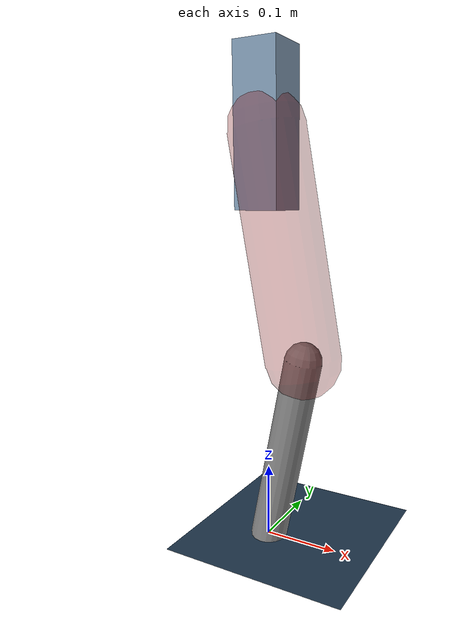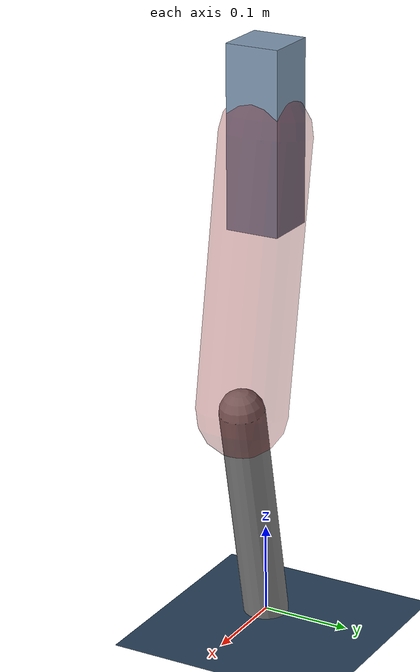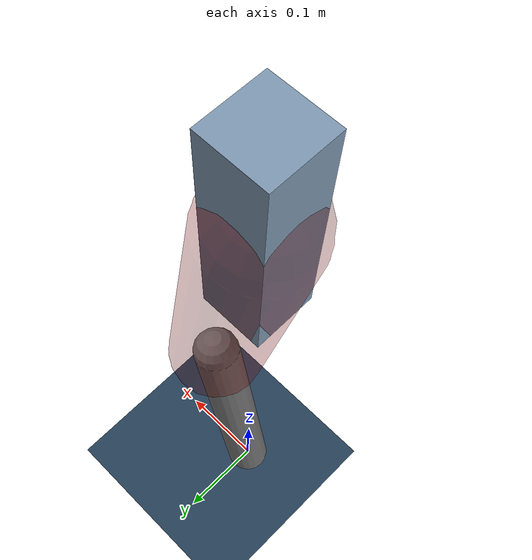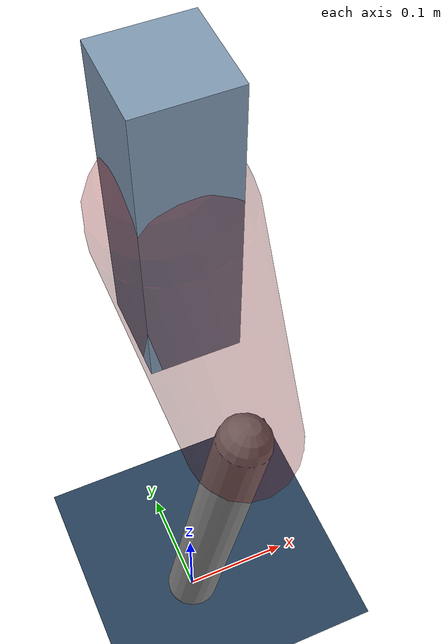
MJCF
<mujoco model="Hopper2D">
	<compiler inertiafromgeom="true" angle="radian" />
	<option timestep="0.001" integrator="implicit" cone="elliptic" solver="Newton" tolerance="1e-10" />

	<default>
		<geom contype="1" conaffinity="1" condim="3" friction="2 0.005 0.0001" solref="0.005 1" />
		<joint limited="true" damping="0.1" />
	</default>

	<asset>
		<texture name="skybox" type="skybox" builtin="gradient" rgb1=".4 .6 .8" rgb2="0 0 0" width="800" height="800" />
		<texture name="grid" type="2d" builtin="checker" rgb1=".1 .2 .3" rgb2=".2 .3 .4" width="300" height="300" mark="edge" markrgb=".2 .3 .4" />
		<material name="ground" texture="grid" texrepeat="1 1" texuniform="true" reflectance="0.1" />
		<material name="leg" rgba="0.5 0.6 0.7 1" />
	</asset>

	<worldbody>

		<geom name="floor" type="plane" size="5 5 0.25" material="ground" />

		<light directional="false" diffuse="0.8 0.8 0.8" specular="0.3 0.3 0.3" pos="0 0 2" dir="0 0 -1" />
		<light mode="targetbodycom" target="base" directional="false" diffuse="0.8 0.8 0.8" specular="0.3 0.3 0.3" pos="0 0 2" dir="0 0 -1" />

		<camera name="fixed" pos="0 -2 1" xyaxes="1 0 0 0 0 1" />
		<camera name="tracking" mode="trackcom" pos="0 -3 1" />

		<body name="root" pos="0 0 0.5493240311095535">
			<joint name="slide_x" type="slide" axis="1 0 0" range="-100 100" />
			<joint name="slide_z" type="slide" axis="0 0 1" range="0 10" />

			<body name="base" pos="0 0 0">
				<geom name="torso" type="box" size="0.03 0.03 0.1" mass="3.007" material="leg" />

				<body name="link1" pos="0 0 0" euler="0 1.3927086960783908 0">
					<joint type="hinge" axis="0 -1 0" pos="0 0 0" name="hinge1" limited="true" range="-3.14 3.14" stiffness="0" damping="0.1" />
					<geom name="thigh" type="capsule" fromto="0 0 0 0.29662088321490787 0 0" size="0.05" rgba="0.5 0 0 0.3" mass="0.9795763846802513" />

					<body name="link2" pos="0.29662088321490787 0 0" euler="0 0.3794653647380715 0">
						<joint type="hinge" axis="0 -1 0" pos="0 0 0" name="hinge2" limited="true" range="-3.14 3.14" stiffness="0" damping="0.1" />
						<geom name="shank" type="capsule" fromto="0 0 0 0.26270314789464566 0 0" size="0.025" mass="0.45296251831571654" />

					</body>
				</body>
			</body>
		</body>
	</worldbody>

	<actuator>
		<motor name="torque1" joint="hinge1" ctrlrange="-146.35874110715238 146.35874110715238" ctrllimited="true" gear="1" />
		<motor name="torque2" joint="hinge2" ctrlrange="-87.47496699901366 87.47496699901366" ctrllimited="true" gear="1" />
	</actuator>
</mujoco>
